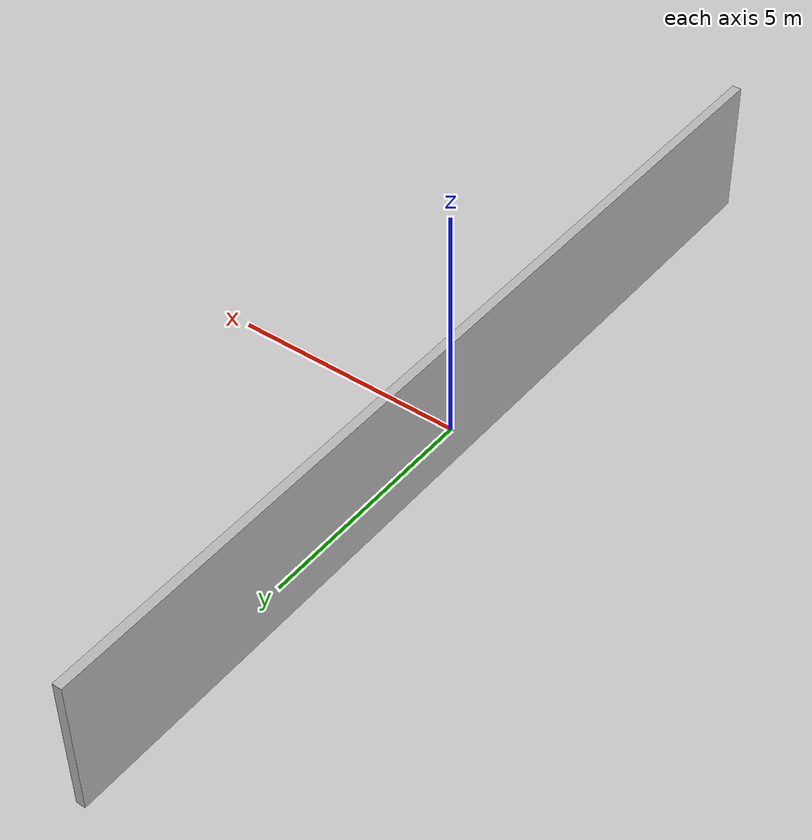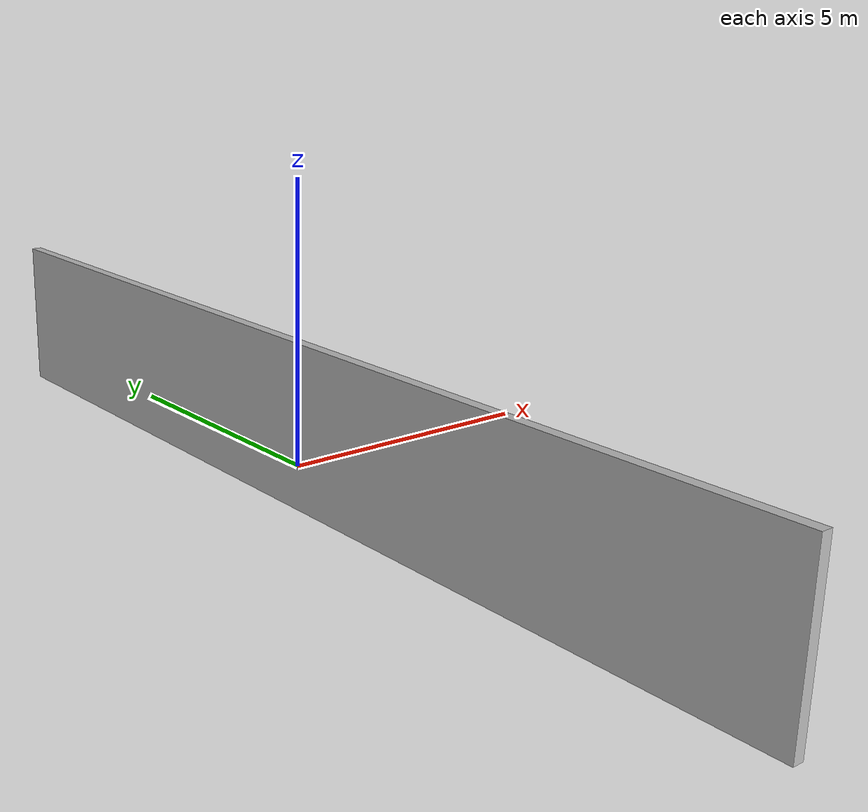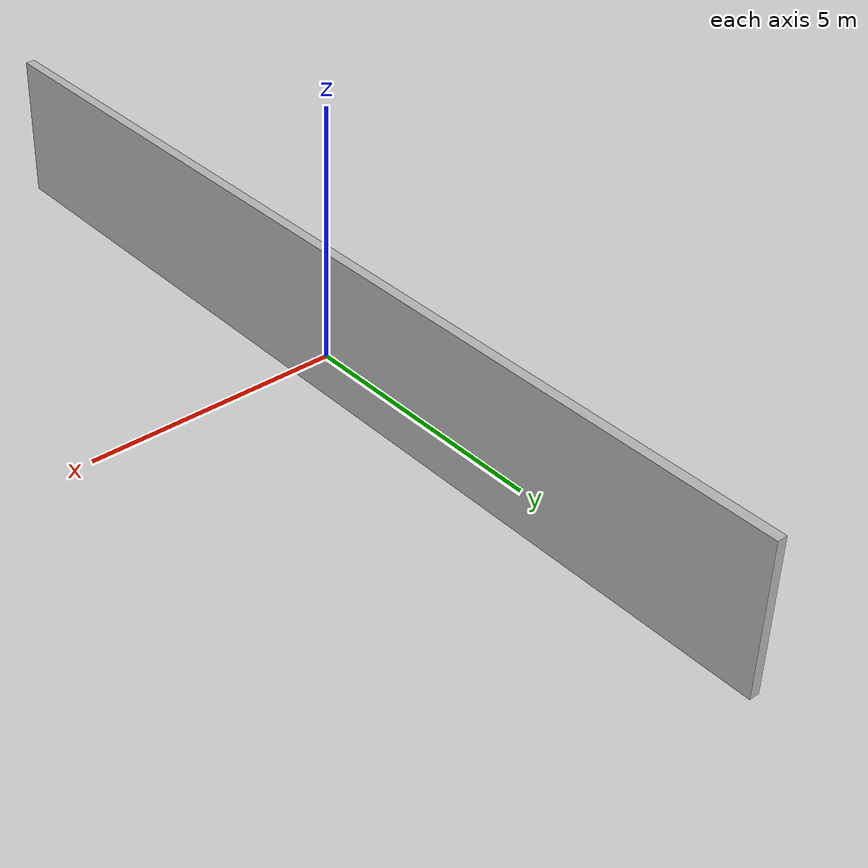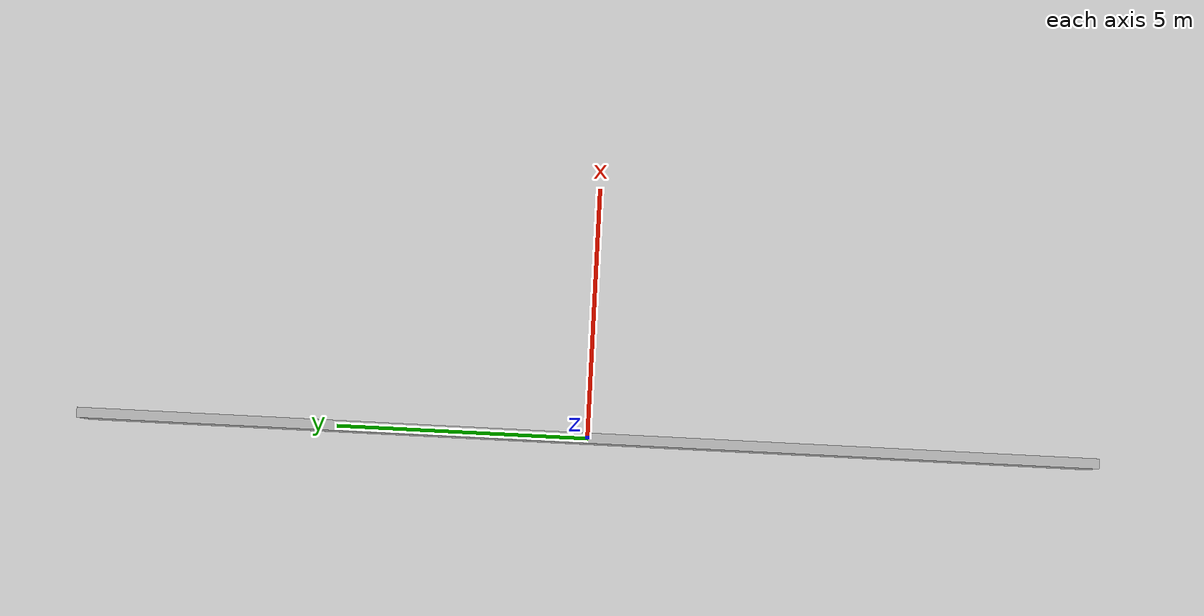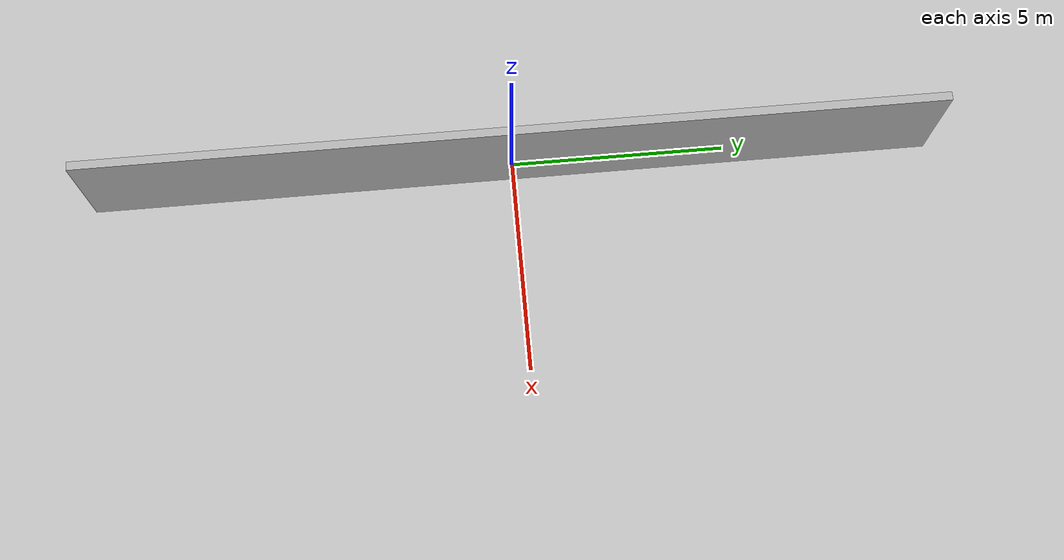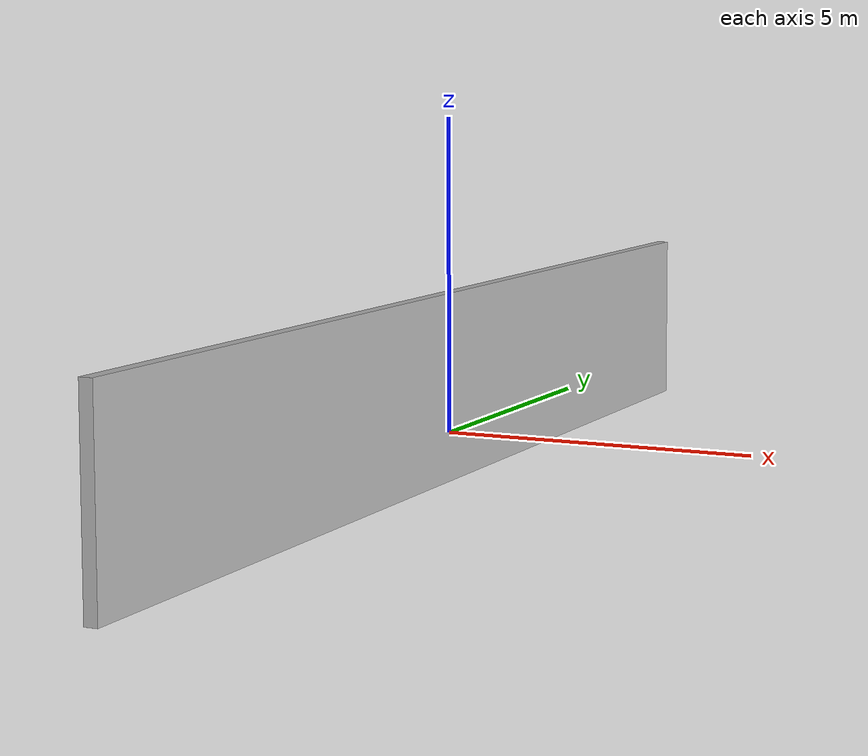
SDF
<?xml version="1.0" ?>
<sdf version="1.5">
  <model name="Big box 2">
    <pose>0 0 0.75  0 0 0</pose>
    <static>true</static>
    <link name="link">
      <inertial>
        <mass>400.0</mass>
        <inertia>
          <ixx>1</ixx>
          <ixy>0</ixy>
          <ixz>0</ixz>
          <iyy>1</iyy>
          <iyz>0</iyz>
          <izz>1</izz>
        </inertia>
      </inertial>

      <collision name="collision">
        <geometry>
          <box>
              <size>0.2 20.0 3.00</size>
          </box>
        </geometry>
	<surface>
          <contact>
            <ode>
              <max_vel>0.1</max_vel>
              <min_depth>0.001</min_depth>
            </ode>
          </contact>
          <friction>
            <ode>
              <mu>0.0</mu> <!-- Friction coefficient -->
              <mu2>0.0</mu2>
            </ode>
          </friction>
        </surface>
      </collision>
      <visual name="visual">
        <geometry>
          <box>
              <size>0.2 20.0 3.00</size>
          </box>
	</geometry>
      </visual>
    </link>
  </model>
</sdf>
